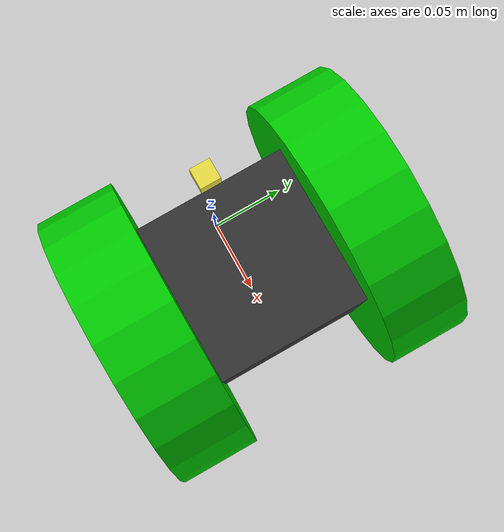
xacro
<?xml version="1.0"?>
<robot name="vehicle" xmlns:xacro="http://www.ros.org/wiki/xacro">
   <!-- put robot description here -->

  <xacro:property name="height" value="0.1" />
  <xacro:property name="ground_offset" value="0.04" />
  <xacro:property name="wheel_radius" value="0.09" />
  <xacro:property name="wheel_length" value="0.05" />

  <material name="green">
    <color rgba="0.0 0.8 0.0 1.0"/>
  </material>

  <material name="grey">
    <color rgba="0.2 0.2 0.2 1.0"/>
  </material>

  <link name="base_link">

    <inertial>
        <mass value="1.0"/>
        <inertia ixx="0.015" ixy="0.0375" ixz="0.0375" iyy="0.0" iyz="0.0" izz="0.0"/>
    </inertial>

    <visual>
      <!--origin xyz="0.0 0.0 ${ground_offset+height/2}"/-->
      <origin xyz="0.05 0.0 0.09"/>
      <geometry>
        <!--box size="${height} ${height} ${height}"/-->
        <box size="0.1 0.1 0.1"/>
      </geometry>
      <material name="grey"/>
    </visual>
    <collision>
      <geometry>
        <box size="0.1 0.1 0.1" />
      </geometry>
    </collision>

  </link>
    <!--origin xyz="0.0 ${-wheel_length-(height/2)} ${wheel_radius}"/-->

  <joint name="left_hinge_to_wheel" type="continuous">
    <origin xyz="0.05 0.0725 0.09" rpy="${pi/2} 0.0 0.0"/>
    <axis xyz = "0 0 1"/>
    <parent link="base_link"/>
    <child link="left_wheel"/>
  </joint>

  <link name="left_wheel">

    <inertial>
      <mass value="0.1"/>
      <inertia ixx="5.1e-5" ixy="5.1e-5" ixz="6.1e-5" iyy="0.0" iyz="0.0" izz="0.0"/>
    </inertial>
    <visual>
      <!--origin xyz="0.05 0.0725 0.09" rpy="${pi/2} 0.0 0.0"/-->
      <geometry>
        <!--cylinder length="${wheel_length}" radius="${wheel_radius}"/-->
        <cylinder length="0.05" radius="0.09"/>
      </geometry>
      <material name="green"/>
    </visual>
    <collision>
      <geometry>
        <cylinder length="0.05" radius="0.09" />
      </geometry>
    </collision>
  </link>
    <!--origin xyz="0.0 ${wheel_length+(height/2)} ${wheel_radius}"/-->

  <joint name="right_hinge_to_wheel" type="continuous">
    <origin xyz="0.05 -0.0725 0.09" rpy="${pi/2} 0.0 0.0"/>
    <axis xyz = "0 0 1"/> <!-- y = wheel radius-->
    <parent link="base_link"/>
    <child link="right_wheel"/>
  </joint>

  <link name="right_wheel">
    <inertial>
        <mass value="0.1"/>
        <inertia ixx="5.1e-5" ixy="5.1e-5" ixz="5.1e-5" iyy="0.0" iyz="0.0" izz="0.0"/>
    </inertial>

    <visual>
      <!--origin xyz="0.05 -0.0725 0.09" rpy="${pi/2} 0.0 0.0"/-->
      <geometry>
        <!--cylinder length="${wheel_length}" radius="${wheel_radius}"/-->
        <cylinder length="0.05" radius="0.09"/>
      </geometry>
      <material name="green"/>
    </visual>
    <collision>
      <geometry>
        <cylinder length="0.05" radius="0.1" />
      </geometry>
    </collision>
  </link>

  <link name="lidar_link">
    <collision>
      <origin xyz="0 0 0.09" rpy="0 0 0" />
      <geometry>
        <box size="0.0125 0.0125 0.0125" />
      </geometry>
    </collision>
    <visual>
      <origin xyz="0 0 0.09" rpy="0 0 0" />
      <geometry>
        <box size="0.0125 0.0125 0.0125" />
      </geometry>
    </visual>
    <inertial>
      <mass value="1e-5" />
      <origin xyz="0 0 0.09" rpy="0 0 0" />
      <inertia ixx="1e-6" ixy="0" ixz="0" iyy="1e-6" iyz="0" izz="1e-6" />
    </inertial>
  </link>
  <joint name="lidar_joint" type="fixed">
    <origin xyz="0 0 0.09" rpy="0 0 0" />
    <parent link="base_link" />
    <child link="lidar_link" />
  </joint>

  <gazebo>
    <plugin name="differential_drive_controller" filename="libgazebo_ros_diff_drive.so">
      <leftJoint>left_hinge_to_wheel</leftJoint>
      <odometryTopic>odom</odometryTopic>
      <odometryFrame>odom</odometryFrame>
      <publishWheelTF>false</publishWheelTF>
      <publishOdomTF>true</publishOdomTF>
      <wheelTorque>5</wheelTorque>
      <wheelAcceleration>0</wheelAcceleration>
      <updateRate>100</updateRate>
      <odometrySource>world</odometrySource>  <!-- 'encoder' instead of 'world' is also possible -->

      <publishTf>1</publishTf>
      <rosDebugLevel>na</rosDebugLevel>
      <rightJoint>right_hinge_to_wheel</rightJoint>
      <robotBaseFrame>base_link</robotBaseFrame>
      <wheelSeparation>0.145</wheelSeparation>
      <wheelDiameter>0.18</wheelDiameter>
      <publishWheelJointState>true</publishWheelJointState>
      <commandTopic>cmd_vel</commandTopic>
      <robotBaseFrame>base_link</robotBaseFrame>
    </plugin>
  </gazebo>

  <gazebo reference="lidar_link">
    <sensor name="head_lidar_sensor" type="ray">
      <pose>0 0 0 0 0 0</pose>
      <visualize>true</visualize>
      <update_rate>25</update_rate> <!-- choosen for SICK LMS111-->
      <ray>
        <scan>
          <horizontal>
            <samples>720</samples>
            <resolution>1</resolution>
            <min_angle>-2.35619</min_angle>
            <max_angle>2.35619</max_angle>
          </horizontal>
        </scan>
        <range>
          <min>0.5</min>
          <max>20.0</max>
          <resolution>0.001</resolution>
        </range>
      </ray>
      <plugin filename="libgazebo_ros_laser.so" name="gazebo_ros_head_hokuyo_controller">
        <topicName>/scan</topicName>
        <frameName>lidar_link</frameName>
      </plugin>
    </sensor>
  </gazebo>

</robot>
